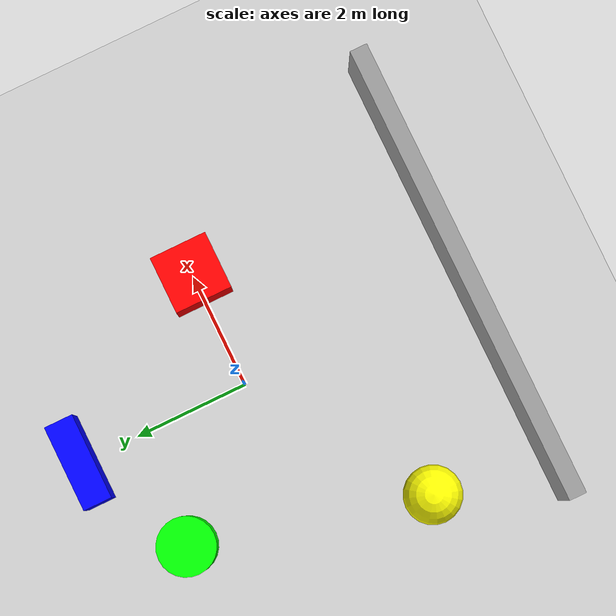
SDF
<?xml version="1.0"?>
<sdf version="1.9">
  <world name="obstacles_world">

    <physics name="1ms" type="ignored">
      <max_step_size>0.001</max_step_size>
      <real_time_factor>1.0</real_time_factor>
    </physics>

    <plugin filename="gz-sim-physics-system" name="gz::sim::systems::Physics"/>
    <plugin filename="gz-sim-user-commands-system" name="gz::sim::systems::UserCommands"/>
    <plugin filename="gz-sim-scene-broadcaster-system" name="gz::sim::systems::SceneBroadcaster"/>
    <plugin filename="gz-sim-sensors-system" name="gz::sim::systems::Sensors">
      <render_engine>ogre2</render_engine>
    </plugin>

    <light type="directional" name="sun">
      <pose>0 0 10 0 0 0</pose>
      <diffuse>0.8 0.8 0.8 1</diffuse>
      <specular>0.2 0.2 0.2 1</specular>
      <direction>-0.5 0.1 -0.9</direction>
    </light>

    <!-- الأرضية -->
    <model name="ground_plane">
      <static>true</static>
      <link name="link">
        <collision name="collision">
          <geometry>
            <plane><normal>0 0 1</normal><size>100 100</size></plane>
          </geometry>
        </collision>
        <visual name="visual">
          <geometry>
            <plane><normal>0 0 1</normal><size>100 100</size></plane>
          </geometry>
          <material>
            <ambient>0.5 0.5 0.5 1</ambient>
            <diffuse>0.8 0.8 0.8 1</diffuse>
            <specular>0.1 0.1 0.1 1</specular>
          </material>
        </visual>
      </link>
    </model>

    <!-- صندوق أحمر -->
    <model name="red_box">
      <pose>2 0 0.5 0 0 0</pose>
      <static>true</static>
      <link name="link">
        <collision name="collision">
          <geometry><box><size>1 1 1</size></box></geometry>
        </collision>
        <visual name="visual">
          <geometry><box><size>1 1 1</size></box></geometry>
          <material>
            <ambient>0.8 0 0 1</ambient>
            <diffuse>1 0 0 1</diffuse>
            <specular>0.5 0.5 0.5 1</specular>
          </material>
        </visual>
      </link>
    </model>

    <!-- أسطوانة خضراء -->
    <model name="green_cylinder">
      <pose>-2 2 0.5 0 0 0</pose>
      <static>true</static>
      <link name="link">
        <collision name="collision">
          <geometry><cylinder><radius>0.5</radius><length>1</length></cylinder></geometry>
        </collision>
        <visual name="visual">
          <geometry><cylinder><radius>0.5</radius><length>1</length></cylinder></geometry>
          <material>
            <ambient>0 0.8 0 1</ambient>
            <diffuse>0 1 0 1</diffuse>
            <specular>0.5 0.5 0.5 1</specular>
          </material>
        </visual>
      </link>
    </model>

    <!-- صندوق أزرق -->
    <model name="blue_box">
      <pose>0 3 0.5 0 0 0</pose>
      <static>true</static>
      <link name="link">
        <collision name="collision">
          <geometry><box><size>1.5 0.5 1</size></box></geometry>
        </collision>
        <visual name="visual">
          <geometry><box><size>1.5 0.5 1</size></box></geometry>
          <material>
            <ambient>0 0 0.8 1</ambient>
            <diffuse>0 0 1 1</diffuse>
            <specular>0.5 0.5 0.5 1</specular>
          </material>
        </visual>
      </link>
    </model>

    <!-- كرة صفراء -->
    <model name="yellow_sphere">
      <pose>-3 -2 0.5 0 0 0</pose>
      <static>true</static>
      <link name="link">
        <collision name="collision">
          <geometry><sphere><radius>0.5</radius></sphere></geometry>
        </collision>
        <visual name="visual">
          <geometry><sphere><radius>0.5</radius></sphere></geometry>
          <material>
            <ambient>0.8 0.8 0 1</ambient>
            <diffuse>1 1 0 1</diffuse>
            <specular>0.5 0.5 0.5 1</specular>
          </material>
        </visual>
      </link>
    </model>

    <!-- جدار رمادي -->
    <model name="gray_wall">
      <pose>0 -4 1 0 0 0</pose>
      <static>true</static>
      <link name="link">
        <collision name="collision">
          <geometry><box><size>8 0.3 2</size></box></geometry>
        </collision>
        <visual name="visual">
          <geometry><box><size>8 0.3 2</size></box></geometry>
          <material>
            <ambient>0.4 0.4 0.4 1</ambient>
            <diffuse>0.6 0.6 0.6 1</diffuse>
            <specular>0.2 0.2 0.2 1</specular>
          </material>
        </visual>
      </link>
    </model>

  </world>
</sdf>
